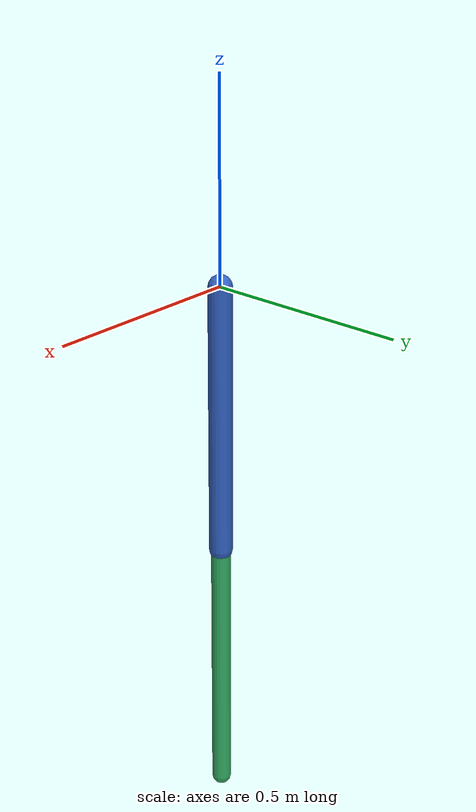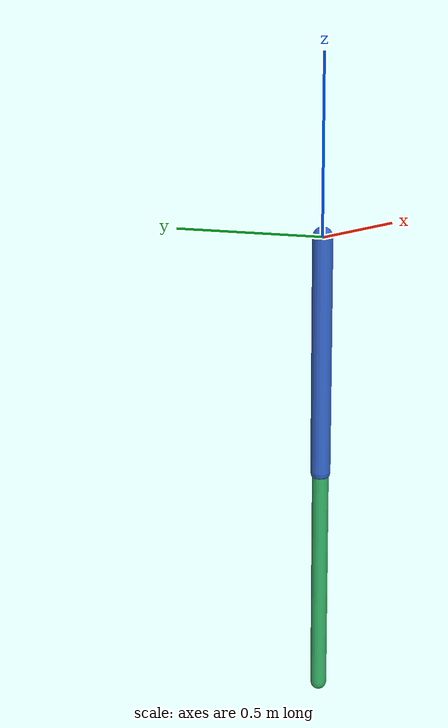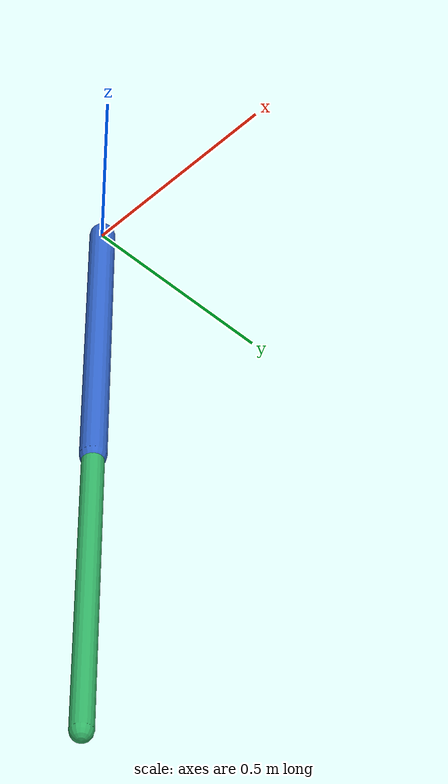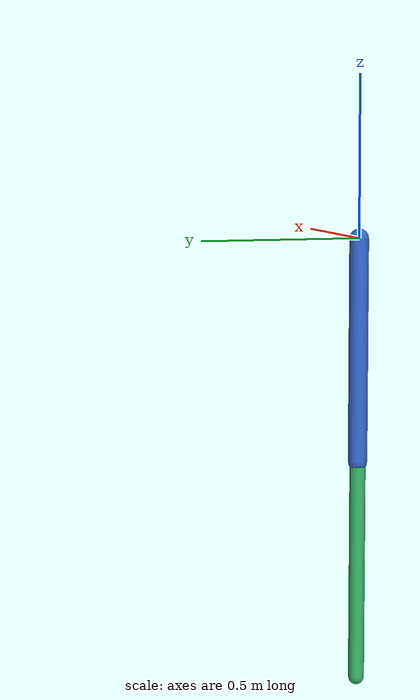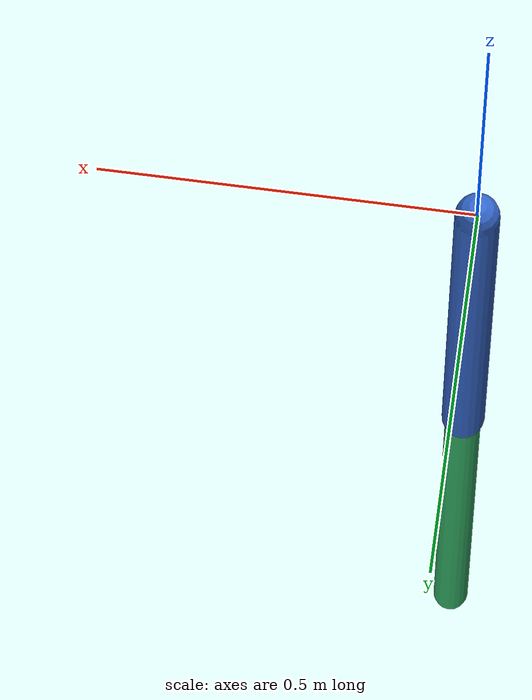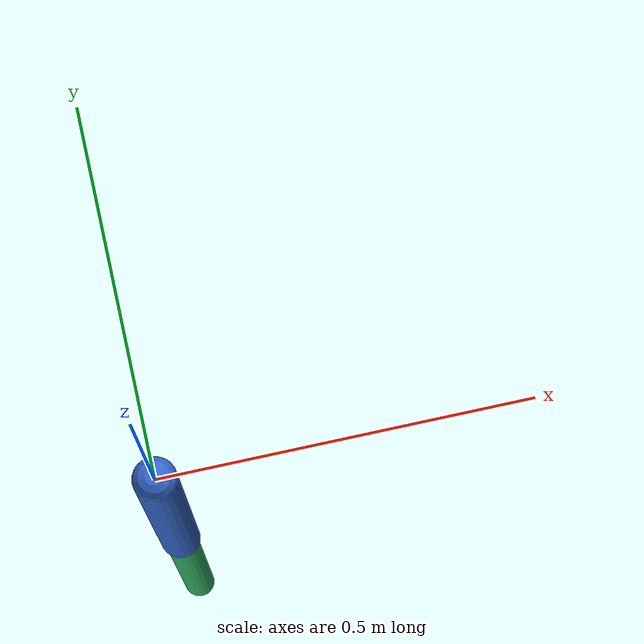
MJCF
<mujoco model="acrobot">
    <compiler angle="radian" autolimits="true"/>
    <option timestep="0.001" gravity="0 0 -9.81" integrator="implicitfast"/>
    <option>
        <flag energy="enable"/>
    </option>

    <default>
        <joint damping="0.05"/>
        <general dyntype="none" gaintype="fixed" biastype="none" dynprm="1 0 0" gainprm="1 0 0" biasprm="0 0 0"/>
    </default>

    <worldbody>
        <body name="base_link" pos="0 0 0">

            <body name="link_1" pos="0 0 0">
                <joint name="joint_1" type="hinge" axis="0 1 0" range="-6.28 6.28"/>
                <geom type="capsule" fromto="0 0 0 0 0 -0.7" size="0.03" rgba="0.2 0.4 0.8 1"/>

                <body name="joint_2_link" pos="0 0 -0.7">
                    <inertial pos="0 0 0" mass="0.02" diaginertia="1e-4 1e-4 1e-4"/>

                    <body name="link_2" pos="0 0 0">
                        <joint name="joint_2" type="hinge" axis="0 1 0" range="-12.56 12.56"/>
                        <geom type="capsule" fromto="0 0 0 0 0 -0.7" size="0.025" rgba="0.2 0.7 0.4 1"/>
                    <site name="tcp_site" pos="0 0 -0.7" size="0.02" rgba="0.9 0.6 0.1 1"/>
                    </body>
                </body>
            </body>
        </body>
    </worldbody>

    <actuator>
        <general name="joint_2_actuator" joint="joint_2" ctrlrange="-20.0 20.0" ctrllimited="true"/>
    </actuator>

    <keyframe>
        <key name="home" qpos="0.12 -0.08" ctrl="0"/>
    </keyframe>
</mujoco>
